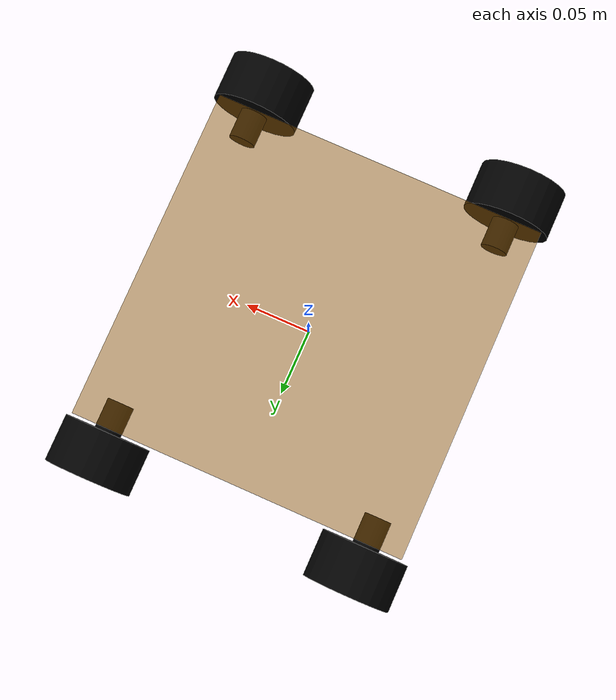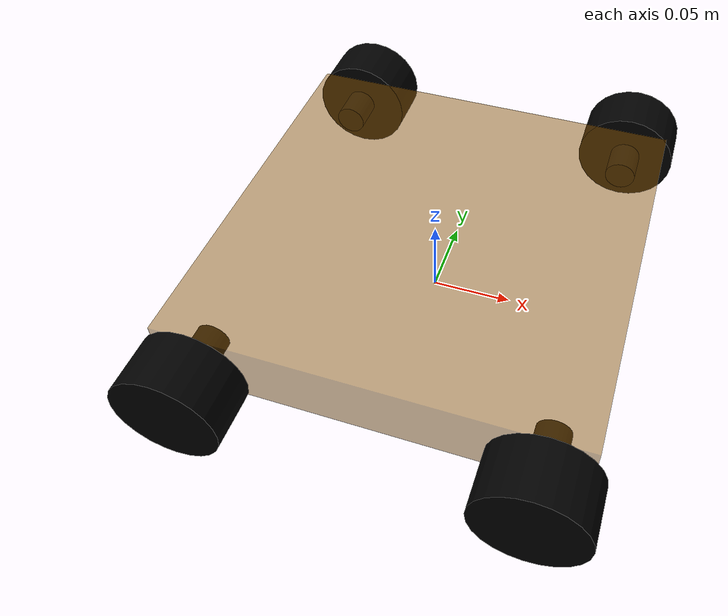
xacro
<robot name="my_base" xmlns:xacro="http://www.ros.org/wiki/xacro">
    <xacro:property name="PI" value="3.1415926"/>
    <material name="black">
        <color rgba="0.0 0.0 0.0 1.0" />
    </material>
    <xacro:property name="base_footprint_radius" value="0.001" />
    <xacro:property name="base_link_radius" value="0.125" /> <!--Temp Useless-->>
    <xacro:property name="base_link_length" value="0.04" />
    <xacro:property name="earth_space" value="0.015" />
    <xacro:property name="base_link_m" value="0.30" /> >
    <xacro:property name="base_link_long" value="0.25" />

    <xacro:property name="wheel_radius" value="0.0325" />
    <xacro:property name="wheel_length" value="0.035" />
    <xacro:property name="wheel_m" value="0.05" />

    <xacro:property name="support_wheel_radius" value="0.0075" />
    <xacro:property name="support_wheel_m" value="0.03" />

    <xacro:property name="wheel_connect_radius" value="0.01" />
    <xacro:property name="wheel_connect_length" value="0.040" />

    <link name="base_footprint">
      <visual>
        <geometry>
          <sphere radius="${base_footprint_radius}" />
        </geometry>
      </visual>
    </link>

    <link name="base_link">
      <visual>
        <geometry>
          <box size="0.25 0.25 ${base_link_length}"/>
        </geometry>
        <origin xyz="0 0 0" rpy="0 0 0" />
        <material name="yellow">
          <color rgba="0.5 0.3 0.0 0.5" />
        </material>
      </visual>
      <collision>
        <geometry>
          <box size="0.25 0.25 ${base_link_length}"/>
        </geometry>
        <origin xyz="0 0 0" rpy="0 0 0" />
      </collision>
      <xacro:Box_inertial_matrix m="${base_link_m}" l="${base_link_long}" w="${base_link_long}" h="${base_link_length}" />
    </link>

    <joint name="base_link2base_footprint" type="fixed">
      <parent link="base_footprint" />
      <child link="base_link" />
      <origin xyz="0 0 ${earth_space + base_link_length / 2 }" />
    </joint>
    <gazebo reference="base_link">
        <material>Gazebo/Yellow</material>
    </gazebo>

    <xacro:macro name="wheel_connect_link" params="name around_flag side_flag">
      <link name="${name}_connect_link">
        <visual>
            <geometry>
                <cylinder radius="${wheel_connect_radius}" length="${wheel_connect_length}" />
            </geometry>
            <origin xyz="0.0 0.0 0.0" rpy="${PI / 2} 0.0 0.0" />
            <!-- show color for rviz -->
            <material name="black" />
        </visual>
        <collision>
          <geometry>
            <cylinder radius="${wheel_connect_radius}" length="${wheel_connect_length}" />
          </geometry>
          <origin xyz="0.0 0.0 0.0" rpy="${PI / 2} 0.0 0.0" />
        </collision>
        <xacro:cylinder_inertial_matrix m="${wheel_m / 3}" r="${wheel_connect_radius}" h="${wheel_connect_length}" />
      </link>

      <joint name="${name}_connect2wheel" type="fixed">
        <parent link="base_link" />
        <child link="${name}_connect_link" />
        <origin xyz="${around_flag * 0.10} ${side_flag * (base_link_long / 2)} ${-(earth_space + base_link_length / 2 - wheel_radius) }" />
        <axis xyz="0 1 0" />
      </joint>
      <!--only add next statement ,gazebo can show the color-->
      <gazebo reference="${name}_connect_link">
        <material>Gazebo/Black</material>
      </gazebo>
    </xacro:macro>
    <!-- instantiatioin for four connection -->
    <xacro:wheel_connect_link name="left_front" around_flag = "1" side_flag="1" />
    <xacro:wheel_connect_link name="left_rear" around_flag = "-1" side_flag="1" />
    <xacro:wheel_connect_link name="right_front" around_flag = "1" side_flag="-1" />
    <xacro:wheel_connect_link name="right_rear" around_flag = "-1" side_flag="-1" />

    <xacro:macro name="add_wheels" params="name around_flag side_flag">
      <link name="${name}_wheel">
        <visual>
          <geometry>
            <cylinder radius="${wheel_radius}" length="${wheel_length}" />
          </geometry>
          <origin xyz="0.0 0.0 0.0" rpy="${PI / 2} 0.0 0.0" />
          <material name="black" />
        </visual>
        <collision>
          <geometry>
            <cylinder radius="${wheel_radius}" length="${wheel_length}" />
          </geometry>
          <origin xyz="0.0 0.0 0.0" rpy="${PI / 2} 0.0 0.0" />
        </collision>
        <xacro:cylinder_inertial_matrix m="${wheel_m}" r="${wheel_radius}" h="${wheel_length}" />
      </link>

      <joint name="${name}_wheel2base_link" type="continuous">
        <parent link="${name}_connect_link" />
        <child link="${name}_wheel" />
        <origin xyz="0 ${side_flag * wheel_connect_length / 2} ${-(earth_space + base_link_length / 2 - wheel_radius) }" />
        <axis xyz="0 1 0" />
      </joint>

      <gazebo reference="${name}_wheel">
        <material>Gazebo/Red</material>
      </gazebo>
    </xacro:macro>
    <!-- instantiation for four wheels -->
    <xacro:add_wheels name="left_front" around_flag = "1" side_flag="1" />
    <xacro:add_wheels name="left_rear" around_flag = "-1" side_flag="1" />
    <xacro:add_wheels name="right_front" around_flag = "1" side_flag="-1" />
    <xacro:add_wheels name="right_rear" around_flag = "-1" side_flag="-1" />

    <!--For support wheels (small ball), now useless-->
    <xacro:macro name="add_support_wheel" params="name flag" >
      <link name="${name}_wheel">
        <visual>
            <geometry>
                <sphere radius="${support_wheel_radius}" />
            </geometry>
            <origin xyz="0 0 0" rpy="0 0 0" />
            <material name="black" />
        </visual>
        <collision>
            <geometry>
                <sphere radius="${support_wheel_radius}" />
            </geometry>
            <origin xyz="0 0 0" rpy="0 0 0" />
        </collision>
        <xacro:sphere_inertial_matrix m="${support_wheel_m}" r="${support_wheel_radius}" />
      </link>

      <joint name="${name}_wheel2base_link" type="continuous">
          <parent link="base_link" />
          <child link="${name}_wheel" />
          <origin xyz="${flag * (base_link_radius - support_wheel_radius)} 0 ${-(base_link_length / 2 + earth_space / 2)}" />
          <axis xyz="1 1 1" />
      </joint>
      <gazebo reference="${name}_wheel">
        <material>Gazebo/Red</material>
      </gazebo>
    </xacro:macro>

</robot>
